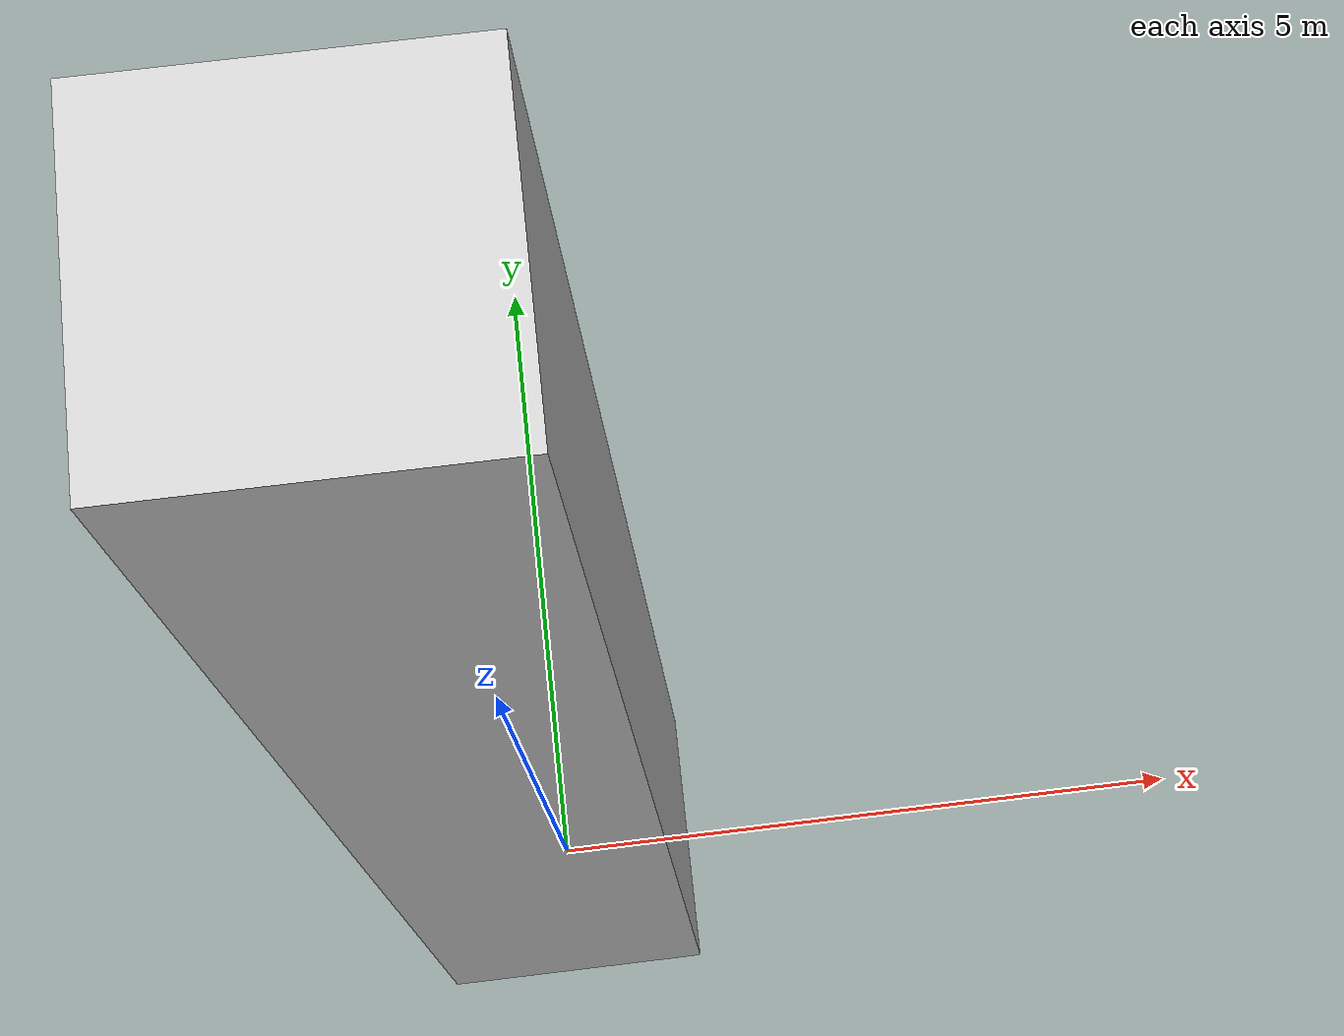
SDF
<?xml version="1.0" ?>
<sdf version="1.7">
  <model name="column">
    <static>true</static>
    <link name="link">
      <collision name="collision">
        <geometry>
          <mesh>
            <uri>model://column/meshes/column.dae</uri>
          </mesh>
        </geometry>
      </collision>
      <visual name="visual">
        <geometry>
          <mesh>
            <uri>model://column/meshes/column.dae</uri>
          </mesh>
        </geometry>
      </visual>
    </link>
  </model>
</sdf>
